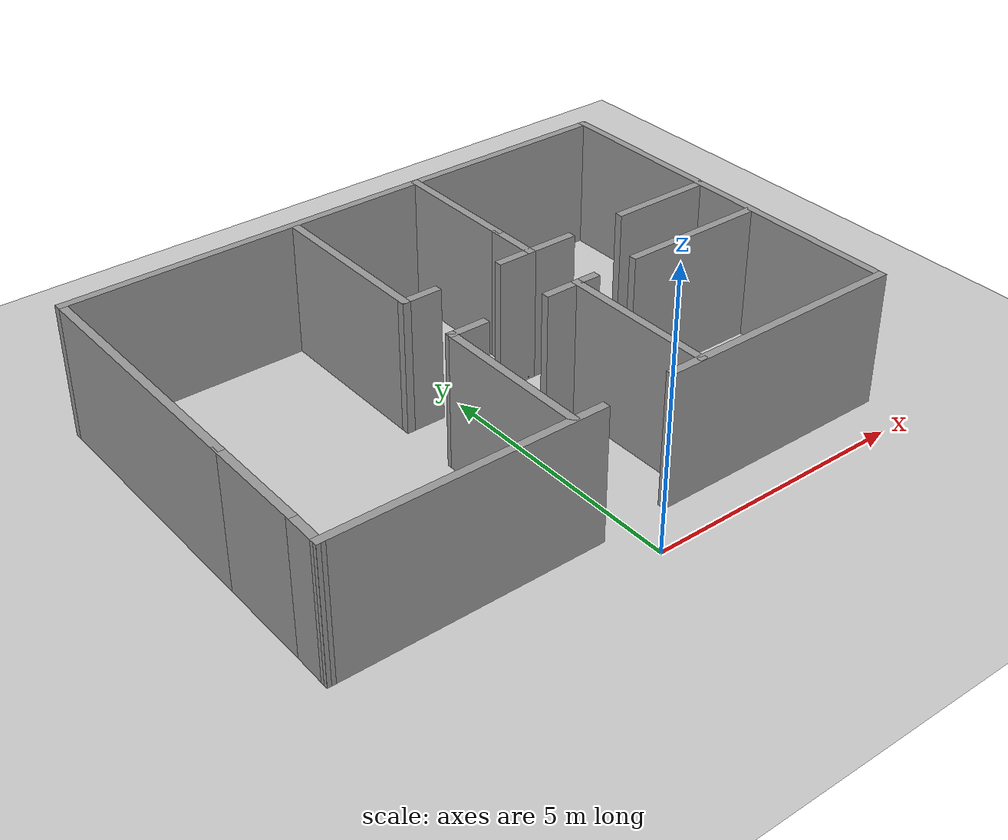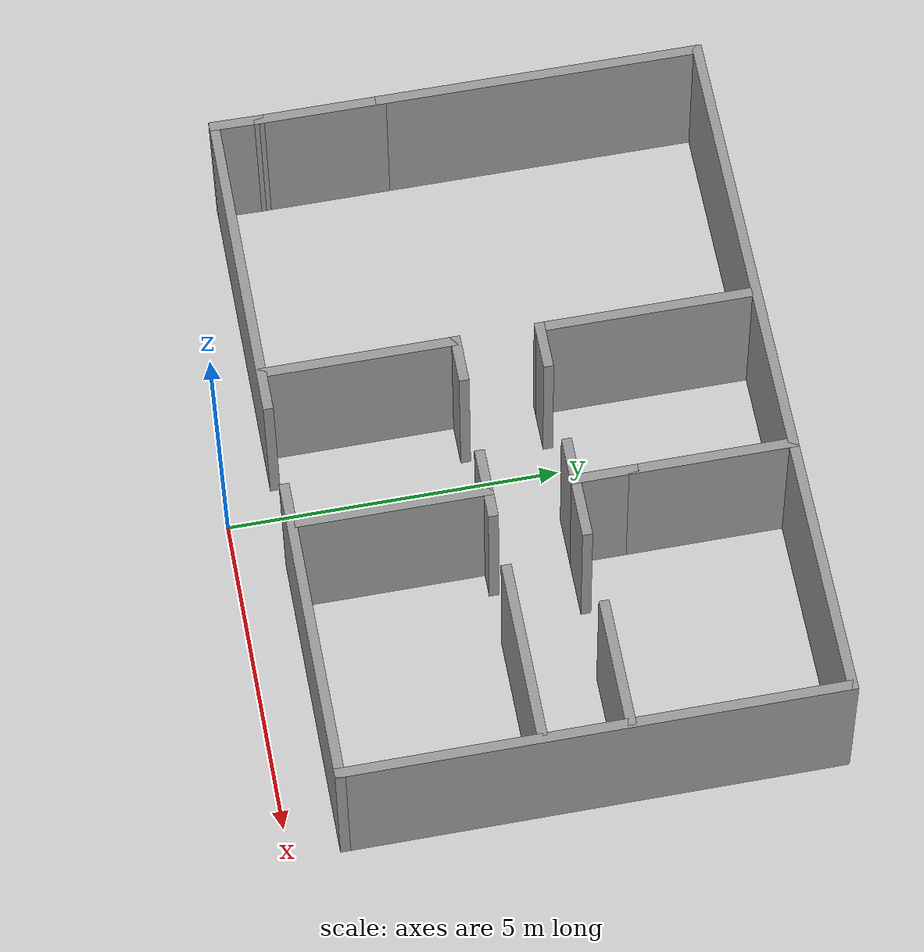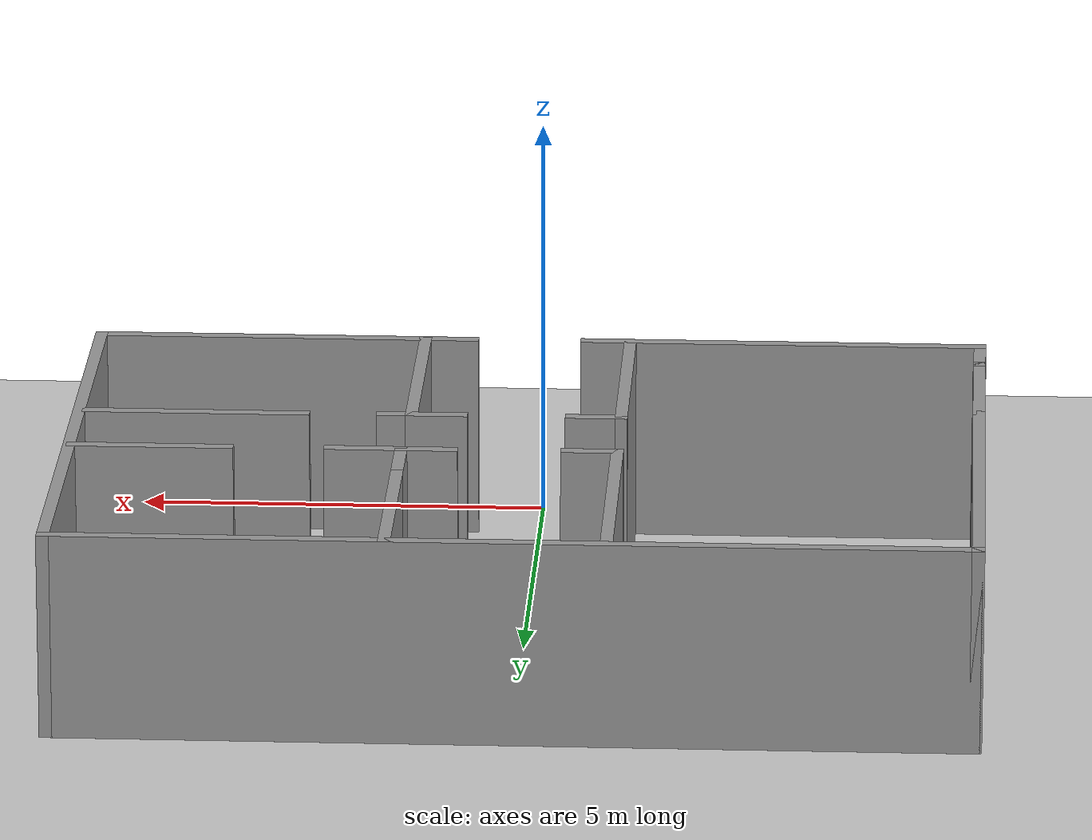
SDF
<?xml version='1.0'?>
<sdf version='1.6'>

<world name="default">

  <include>
    <uri>model://sun</uri>
  </include>

  <include>
    <uri>model://ground_plane</uri>
  </include>

  <physics type="ode">
      <max_step_size>0.001</max_step_size>
      <real_time_factor>0.8</real_time_factor>
      <real_time_update_rate>1000</real_time_update_rate>
      <gravity>0 0 -9.81</gravity>
     <ode>
        <solver>
          <type>world</type>
          <iters>50</iters>
          <sor>1.4</sor>
        </solver>
        <constraints>
          <cfm>0</cfm>
          <erp>1</erp>
          <contact_max_correcting_vel>0.1</contact_max_correcting_vel>
          <contact_surface_layer>0.01</contact_surface_layer>
        </constraints>
      </ode>
  </physics>

  <model name='house'>
    <pose frame=''>0.005205 4.12275 0 0 -0 0</pose>
    <link name='Wall_13'>
      <collision name='Wall_13_Collision'>
        <geometry>
          <box>
            <size>5 0.15 2.5</size>
          </box>
        </geometry>
        <pose frame=''>0 0 1.25 0 -0 0</pose>
      </collision>
      <visual name='Wall_13_Visual'>
        <pose frame=''>0 0 1.25 0 -0 0</pose>
        <geometry>
          <box>
            <size>5 0.15 2.5</size>
          </box>
        </geometry>
        <material>
          <script>
            <uri>file://media/materials/scripts/gazebo.material</uri>
            <name>Gazebo/Grey</name>
          </script>
          <ambient>1 1 1 1</ambient>
        </material>
        <meta>
          <layer>0</layer>
        </meta>
      </visual>
      <pose frame=''>-5.41948 1.62275 0 0 -0 -1.5708</pose>
    </link>
    <link name='Wall_14'>
      <collision name='Wall_14_Collision'>
        <geometry>
          <box>
            <size>2 0.15 2.5</size>
          </box>
        </geometry>
        <pose frame=''>0 0 1.25 0 -0 0</pose>
      </collision>
      <visual name='Wall_14_Visual'>
        <pose frame=''>0 0 1.25 0 -0 0</pose>
        <geometry>
          <box>
            <size>2 0.15 2.5</size>
          </box>
        </geometry>
        <material>
          <script>
            <uri>file://media/materials/scripts/gazebo.material</uri>
            <name>Gazebo/Grey</name>
          </script>
          <ambient>1 1 1 1</ambient>
        </material>
        <meta>
          <layer>0</layer>
        </meta>
      </visual>
      <pose frame=''>-5.41948 -1.72725 0 0 -0 -1.5708</pose>
    </link>
    <link name='Wall_17'>
      <collision name='Wall_17_Collision'>
        <geometry>
          <box>
            <size>5 0.15 2.5</size>
          </box>
        </geometry>
        <pose frame=''>0 0 1.25 0 -0 0</pose>
      </collision>
      <visual name='Wall_17_Visual'>
        <pose frame=''>0 0 1.25 0 -0 0</pose>
        <geometry>
          <box>
            <size>5 0.15 2.5</size>
          </box>
        </geometry>
        <material>
          <script>
            <uri>file://media/materials/scripts/gazebo.material</uri>
            <name>Gazebo/Grey</name>
          </script>
          <ambient>1 1 1 1</ambient>
        </material>
        <meta>
          <layer>0</layer>
        </meta>
      </visual>
      <pose frame=''>-3.00441 -3.32356 0 0 -0 3.14159</pose>
    </link>
    <link name='Wall_18'>
      <collision name='Wall_18_Collision'>
        <geometry>
          <box>
            <size>0.821388 0.15 2.5</size>
          </box>
        </geometry>
        <pose frame=''>0 0 1.25 0 -0 0</pose>
      </collision>
      <visual name='Wall_18_Visual'>
        <pose frame=''>0 0 1.25 0 -0 0</pose>
        <geometry>
          <box>
            <size>0.821388 0.15 2.5</size>
          </box>
        </geometry>
        <material>
          <script>
            <uri>file://media/materials/scripts/gazebo.material</uri>
            <name>Gazebo/Grey</name>
          </script>
          <ambient>1 1 1 1</ambient>
        </material>
        <meta>
          <layer>0</layer>
        </meta>
      </visual>
      <pose frame=''>-5.42445 -2.9879 0 0 -0 1.55601</pose>
    </link>
    <link name='Wall_20'>
      <collision name='Wall_20_Collision'>
        <geometry>
          <box>
            <size>3.00017 0.15 2.5</size>
          </box>
        </geometry>
        <pose frame=''>0 0 1.25 0 -0 0</pose>
      </collision>
      <visual name='Wall_20_Visual'>
        <pose frame=''>0 0 1.25 0 -0 0</pose>
        <geometry>
          <box>
            <size>3.00017 0.15 2.5</size>
          </box>
        </geometry>
        <material>
          <script>
            <uri>file://media/materials/scripts/gazebo.material</uri>
            <name>Gazebo/Grey</name>
          </script>
          <ambient>1 1 1 1</ambient>
        </material>
        <meta>
          <layer>0</layer>
        </meta>
      </visual>
      <pose frame=''>-1.11612 -1.86956 0 0 -0 1.5705</pose>
    </link>
    <link name='Wall_22'>
      <collision name='Wall_22_Collision'>
        <geometry>
          <box>
            <size>3.25 0.15 2.5</size>
          </box>
        </geometry>
        <pose frame=''>0 0 1.25 0 -0 0</pose>
      </collision>
      <visual name='Wall_22_Visual'>
        <pose frame=''>0 0 1.25 0 -0 0</pose>
        <geometry>
          <box>
            <size>3.25 0.15 2.5</size>
          </box>
        </geometry>
        <material>
          <script>
            <uri>file://media/materials/scripts/gazebo.material</uri>
            <name>Gazebo/Grey</name>
          </script>
          <ambient>1 1 1 1</ambient>
        </material>
        <meta>
          <layer>0</layer>
        </meta>
      </visual>
      <pose frame=''>-1.11654 2.35861 0 0 -0 1.5708</pose>
    </link>
    <link name='Wall_28'>
      <collision name='Wall_28_Collision'>
        <geometry>
          <box>
            <size>3 0.15 2.5</size>
          </box>
        </geometry>
        <pose frame=''>0 0 1.25 0 -0 0</pose>
      </collision>
      <visual name='Wall_28_Visual'>
        <pose frame=''>0 0 1.25 0 -0 0</pose>
        <geometry>
          <box>
            <size>3 0.15 2.5</size>
          </box>
        </geometry>
        <material>
          <script>
            <uri>file://media/materials/scripts/gazebo.material</uri>
            <name>Gazebo/Grey</name>
          </script>
          <ambient>1 1 1 1</ambient>
        </material>
        <meta>
          <layer>0</layer>
        </meta>
      </visual>
      <pose frame=''>1.41358 -1.8625 0 0 -0 1.5708</pose>
    </link>
    <link name='Wall_37'>
      <collision name='Wall_37_Collision'>
        <geometry>
          <box>
            <size>0.75 0.15 2.5</size>
          </box>
        </geometry>
        <pose frame=''>0 0 1.25 0 -0 0</pose>
      </collision>
      <visual name='Wall_37_Visual'>
        <pose frame=''>0 0 1.25 0 -0 0</pose>
        <geometry>
          <box>
            <size>0.75 0.15 2.5</size>
          </box>
        </geometry>
        <material>
          <script>
            <uri>file://media/materials/scripts/gazebo.material</uri>
            <name>Gazebo/Grey</name>
          </script>
          <ambient>1 1 1 1</ambient>
        </material>
        <meta>
          <layer>0</layer>
        </meta>
      </visual>
      <pose frame=''>1.11358 -0.437499 0 0 -0 3.14159</pose>
    </link>
    <link name='Wall_41'>
      <collision name='Wall_41_Collision'>
        <geometry>
          <box>
            <size>0.75 0.15 2.5</size>
          </box>
        </geometry>
        <pose frame=''>0 0 1.25 0 -0 0</pose>
      </collision>
      <visual name='Wall_41_Visual'>
        <pose frame=''>0 0 1.25 0 -0 0</pose>
        <geometry>
          <box>
            <size>0.75 0.15 2.5</size>
          </box>
        </geometry>
        <material>
          <script>
            <uri>file://media/materials/scripts/gazebo.material</uri>
            <name>Gazebo/Grey</name>
          </script>
          <ambient>1 1 1 1</ambient>
        </material>
        <meta>
          <layer>0</layer>
        </meta>
      </visual>
      <pose frame=''>-0.815702 -0.444555 0 0 -0 0</pose>
    </link>
    <link name='Wall_43'>
      <collision name='Wall_43_Collision'>
        <geometry>
          <box>
            <size>0.75 0.15 2.5</size>
          </box>
        </geometry>
        <pose frame=''>0 0 1.25 0 -0 0</pose>
      </collision>
      <visual name='Wall_43_Visual'>
        <pose frame=''>0 0 1.25 0 -0 0</pose>
        <geometry>
          <box>
            <size>0.75 0.15 2.5</size>
          </box>
        </geometry>
        <material>
          <script>
            <uri>file://media/materials/scripts/gazebo.material</uri>
            <name>Gazebo/Grey</name>
          </script>
          <ambient>1 1 1 1</ambient>
        </material>
        <meta>
          <layer>0</layer>
        </meta>
      </visual>
      <pose frame=''>-0.816537 0.808614 0 0 -0 0</pose>
    </link>
    <link name='Wall_49'>
      <collision name='Wall_49_Collision'>
        <geometry>
          <box>
            <size>2.5 0.15 2.5</size>
          </box>
        </geometry>
        <pose frame=''>0 0 1.25 0 -0 0</pose>
      </collision>
      <visual name='Wall_49_Visual'>
        <pose frame=''>0 0 1.25 0 -0 0</pose>
        <geometry>
          <box>
            <size>2.5 0.15 2.5</size>
          </box>
        </geometry>
        <material>
          <script>
            <uri>file://media/materials/scripts/gazebo.material</uri>
            <name>Gazebo/Grey</name>
          </script>
          <ambient>1 1 1 1</ambient>
        </material>
        <meta>
          <layer>0</layer>
        </meta>
      </visual>
      <pose frame=''>1.46117 2.85884 0 0 -0 1.5708</pose>
    </link>
    <link name='Wall_5'>
      <collision name='Wall_5_Collision'>
        <geometry>
          <box>
            <size>11 0.15 2.5</size>
          </box>
        </geometry>
        <pose frame=''>0 0 1.25 0 -0 0</pose>
      </collision>
      <visual name='Wall_5_Visual'>
        <pose frame=''>0 0 1.25 0 -0 0</pose>
        <geometry>
          <box>
            <size>11 0.15 2.5</size>
          </box>
        </geometry>
        <material>
          <script>
            <uri>file://media/materials/scripts/gazebo.material</uri>
            <name>Gazebo/Grey</name>
          </script>
          <ambient>1 1 1 1</ambient>
        </material>
        <meta>
          <layer>0</layer>
        </meta>
      </visual>
      <pose frame=''>0.005515 4.04775 0 0 -0 0</pose>
    </link>
    <link name='Wall_55'>
      <collision name='Wall_55_Collision'>
        <geometry>
          <box>
            <size>1 0.15 2.5</size>
          </box>
        </geometry>
        <pose frame=''>0 0 1.25 0 -0 0</pose>
      </collision>
      <visual name='Wall_55_Visual'>
        <pose frame=''>0 0 1.25 0 -0 0</pose>
        <geometry>
          <box>
            <size>1 0.15 2.5</size>
          </box>
        </geometry>
        <material>
          <script>
            <uri>file://media/materials/scripts/gazebo.material</uri>
            <name>Gazebo/Grey</name>
          </script>
          <ambient>1 1 1 1</ambient>
        </material>
        <meta>
          <layer>0</layer>
        </meta>
      </visual>
      <pose frame=''>1.46117 1.25884 0 0 -0 -1.5708</pose>
    </link>
    <link name='Wall_56'>
      <collision name='Wall_56_Collision'>
        <geometry>
          <box>
            <size>0.75 0.15 2.5</size>
          </box>
        </geometry>
        <pose frame=''>0 0 1.25 0 -0 0</pose>
      </collision>
      <visual name='Wall_56_Visual'>
        <pose frame=''>0 0 1.25 0 -0 0</pose>
        <geometry>
          <box>
            <size>0.75 0.15 2.5</size>
          </box>
        </geometry>
        <material>
          <script>
            <uri>file://media/materials/scripts/gazebo.material</uri>
            <name>Gazebo/Grey</name>
          </script>
          <ambient>1 1 1 1</ambient>
        </material>
        <meta>
          <layer>0</layer>
        </meta>
      </visual>
      <pose frame=''>1.16117 0.833837 0 0 -0 3.14159</pose>
    </link>
    <link name='Wall_58'>
      <collision name='Wall_58_Collision'>
        <geometry>
          <box>
            <size>1 0.15 2.5</size>
          </box>
        </geometry>
        <pose frame=''>0 0 1.25 0 -0 0</pose>
      </collision>
      <visual name='Wall_58_Visual'>
        <pose frame=''>0 0 1.25 0 -0 0</pose>
        <geometry>
          <box>
            <size>1 0.15 2.5</size>
          </box>
        </geometry>
        <material>
          <script>
            <uri>file://media/materials/scripts/gazebo.material</uri>
            <name>Gazebo/Grey</name>
          </script>
          <ambient>1 1 1 1</ambient>
        </material>
        <meta>
          <layer>0</layer>
        </meta>
      </visual>
      <pose frame=''>1.88617 0.833837 0 0 -0 0</pose>
    </link>
    <link name='Wall_6'>
      <collision name='Wall_6_Collision'>
        <geometry>
          <box>
            <size>7.5 0.15 2.5</size>
          </box>
        </geometry>
        <pose frame=''>0 0 1.25 0 -0 0</pose>
      </collision>
      <visual name='Wall_6_Visual'>
        <pose frame=''>0 0 1.25 0 -0 0</pose>
        <geometry>
          <box>
            <size>7.5 0.15 2.5</size>
          </box>
        </geometry>
        <material>
          <script>
            <uri>file://media/materials/scripts/gazebo.material</uri>
            <name>Gazebo/Grey</name>
          </script>
          <ambient>1 1 1 1</ambient>
        </material>
        <meta>
          <layer>0</layer>
        </meta>
      </visual>
      <pose frame=''>5.43051 0.372753 0 0 -0 -1.5708</pose>
    </link>
    <link name='Wall_60'>
      <collision name='Wall_60_Collision'>
        <geometry>
          <box>
            <size>2 0.15 2.5</size>
          </box>
        </geometry>
        <pose frame=''>0 0 1.25 0 -0 0</pose>
      </collision>
      <visual name='Wall_60_Visual'>
        <pose frame=''>0 0 1.25 0 -0 0</pose>
        <geometry>
          <box>
            <size>2 0.15 2.5</size>
          </box>
        </geometry>
        <material>
          <script>
            <uri>file://media/materials/scripts/gazebo.material</uri>
            <name>Gazebo/Grey</name>
          </script>
          <ambient>1 1 1 1</ambient>
        </material>
        <meta>
          <layer>0</layer>
        </meta>
      </visual>
      <pose frame=''>4.46494 0.858248 0 0 -0 0</pose>
    </link>
    <link name='Wall_62'>
      <collision name='Wall_62_Collision'>
        <geometry>
          <box>
            <size>0.5 0.15 2.5</size>
          </box>
        </geometry>
        <pose frame=''>0 0 1.25 0 -0 0</pose>
      </collision>
      <visual name='Wall_62_Visual'>
        <pose frame=''>0 0 1.25 0 -0 0</pose>
        <geometry>
          <box>
            <size>0.5 0.15 2.5</size>
          </box>
        </geometry>
        <material>
          <script>
            <uri>file://media/materials/scripts/gazebo.material</uri>
            <name>Gazebo/Grey</name>
          </script>
          <ambient>1 1 1 1</ambient>
        </material>
        <meta>
          <layer>0</layer>
        </meta>
      </visual>
      <pose frame=''>1.58858 -0.437499 0 0 -0 0</pose>
    </link>
    <link name='Wall_65'>
      <collision name='Wall_65_Collision'>
        <geometry>
          <box>
            <size>2.75 0.15 2.5</size>
          </box>
        </geometry>
        <pose frame=''>0 0 1.25 0 -0 0</pose>
      </collision>
      <visual name='Wall_65_Visual'>
        <pose frame=''>0 0 1.25 0 -0 0</pose>
        <geometry>
          <box>
            <size>2.75 0.15 2.5</size>
          </box>
        </geometry>
        <material>
          <script>
            <uri>file://media/materials/scripts/gazebo.material</uri>
            <name>Gazebo/Grey</name>
          </script>
          <ambient>1 1 1 1</ambient>
        </material>
        <meta>
          <layer>0</layer>
        </meta>
      </visual>
      <pose frame=''>4.01867 -0.404079 0 0 -0 0</pose>
    </link>
    <link name='Wall_7'>
      <collision name='Wall_7_Collision'>
        <geometry>
          <box>
            <size>4.75 0.15 2.5</size>
          </box>
        </geometry>
        <pose frame=''>0 0 1.25 0 -0 0</pose>
      </collision>
      <visual name='Wall_7_Visual'>
        <pose frame=''>0 0 1.25 0 -0 0</pose>
        <geometry>
          <box>
            <size>4.75 0.15 2.5</size>
          </box>
        </geometry>
        <material>
          <script>
            <uri>file://media/materials/scripts/gazebo.material</uri>
            <name>Gazebo/Grey</name>
          </script>
          <ambient>1 1 1 1</ambient>
        </material>
        <meta>
          <layer>0</layer>
        </meta>
      </visual>
      <pose frame=''>3.13051 -3.30225 0 0 -0 3.14159</pose>
    </link>
    <static>1</static>
  </model>

</world>
</sdf>
